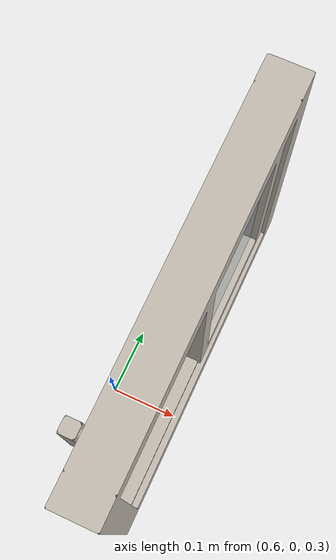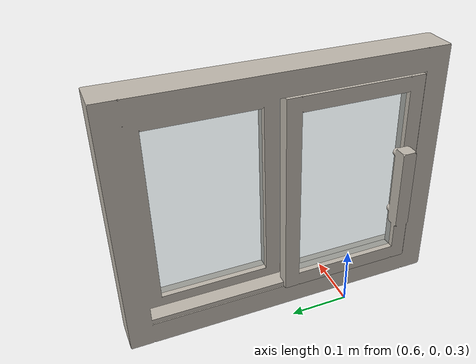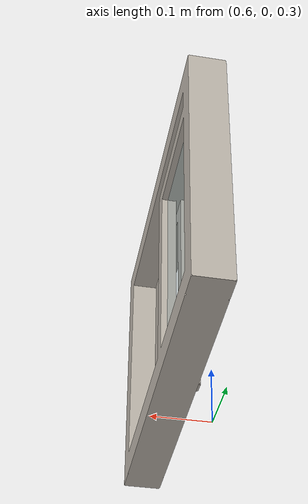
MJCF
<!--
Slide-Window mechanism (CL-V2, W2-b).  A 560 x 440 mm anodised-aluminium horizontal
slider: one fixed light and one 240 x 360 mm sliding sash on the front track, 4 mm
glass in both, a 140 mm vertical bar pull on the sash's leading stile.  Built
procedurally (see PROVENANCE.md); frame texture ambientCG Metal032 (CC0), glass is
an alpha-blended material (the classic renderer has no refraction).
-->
<?xml version="1.0"?>
<mujoco model="window">
  <compiler angle="radian" meshdir="assets" texturedir="assets"/>

  <asset>
    <texture name="alu_tex" type="2d" file="alu.png"/>
    <material name="alu" texture="alu_tex" specular="0.6" shininess="0.55" reflectance="0.12"/>
    <material name="glass" rgba="0.62 0.75 0.78 0.30" specular="0.9" shininess="0.85" reflectance="0.25"/>
    <mesh name="window_frame" file="window_frame.obj"/>
    <mesh name="window_glass_fixed" file="window_glass_fixed.obj"/>
    <mesh name="window_sash" file="window_sash.obj"/>
    <mesh name="window_glass_sash" file="window_glass_sash.obj"/>
  </asset>

  <worldbody>
    <body name="window_base" pos="0.65 0 0.5" mocap="true">
      <geom name="window_frame_visual" type="mesh" mesh="window_frame" material="alu" contype="0" conaffinity="0" group="2" mass="0"/>
      <geom name="window_glass_fixed_visual" type="mesh" mesh="window_glass_fixed" material="glass" contype="0" conaffinity="0" group="2" mass="0"/>
      <geom name="window_body" type="box" pos="0.0300 0.3500 0.0000" size="0.0300 0.0200 0.2200" group="3" rgba="0.5 0.5 0.5 0.25" condim="3" friction="1 0.03 0.003" contype="2" conaffinity="1" solref="0.01 1"/>
      <geom name="window_jamb_near" type="box" pos="0.0300 -0.1700 0.0000" size="0.0300 0.0200 0.2200" group="3" rgba="0.5 0.5 0.5 0.25" condim="3" friction="1 0.03 0.003" contype="2" conaffinity="1" solref="0.01 1"/>
      <geom name="window_head" type="box" pos="0.0300 0.0900 0.2000" size="0.0300 0.2400 0.0200" group="3" rgba="0.5 0.5 0.5 0.25" condim="3" friction="1 0.03 0.003" contype="2" conaffinity="1" solref="0.01 1"/>
      <geom name="window_sill" type="box" pos="0.0300 0.0900 -0.2000" size="0.0300 0.2400 0.0200" group="3" rgba="0.5 0.5 0.5 0.25" condim="3" friction="1 0.03 0.003" contype="2" conaffinity="1" solref="0.01 1"/>
      <!-- Base site at the pull when the sash is closed. -->
      <site name="base_site" pos="-0.04 -0.10 0.0" size="0.01" rgba="0 0 1 0.3"/>
      <body name="handle">
        <joint name="window_slide" type="slide" axis="0 1 0" range="0 0.234"
               limited="true" damping="0.1"/>
      <geom name="window_sash_visual" type="mesh" mesh="window_sash" material="alu" contype="0" conaffinity="0" group="2" mass="0"/>
      <geom name="window_glass_sash_visual" type="mesh" mesh="window_glass_sash" material="glass" contype="0" conaffinity="0" group="2" mass="0"/>
      <geom name="window_pane" type="box" pos="0.0060 -0.0250 0.0000" size="0.0120 0.1200 0.1800" group="3" rgba="0.5 0.5 0.5 0.25" condim="3" friction="1 0.03 0.003" contype="2" conaffinity="1" solref="0.01 1" mass="1.05000"/>
      <geom name="handle" type="box" pos="-0.0400 -0.1000 0.0000" size="0.0120 0.0120 0.0700" group="3" rgba="0.5 0.5 0.5 0.25" condim="3" friction="1 0.03 0.003" contype="2" conaffinity="1" solref="0.01 1" mass="0.12000"/>
        <site name="object_site" pos="-0.04 -0.10 0.0" size="0.01 0.01 0.01" rgba="1 0 0 1"/>
      </body>
    </body>
  </worldbody>
</mujoco>
